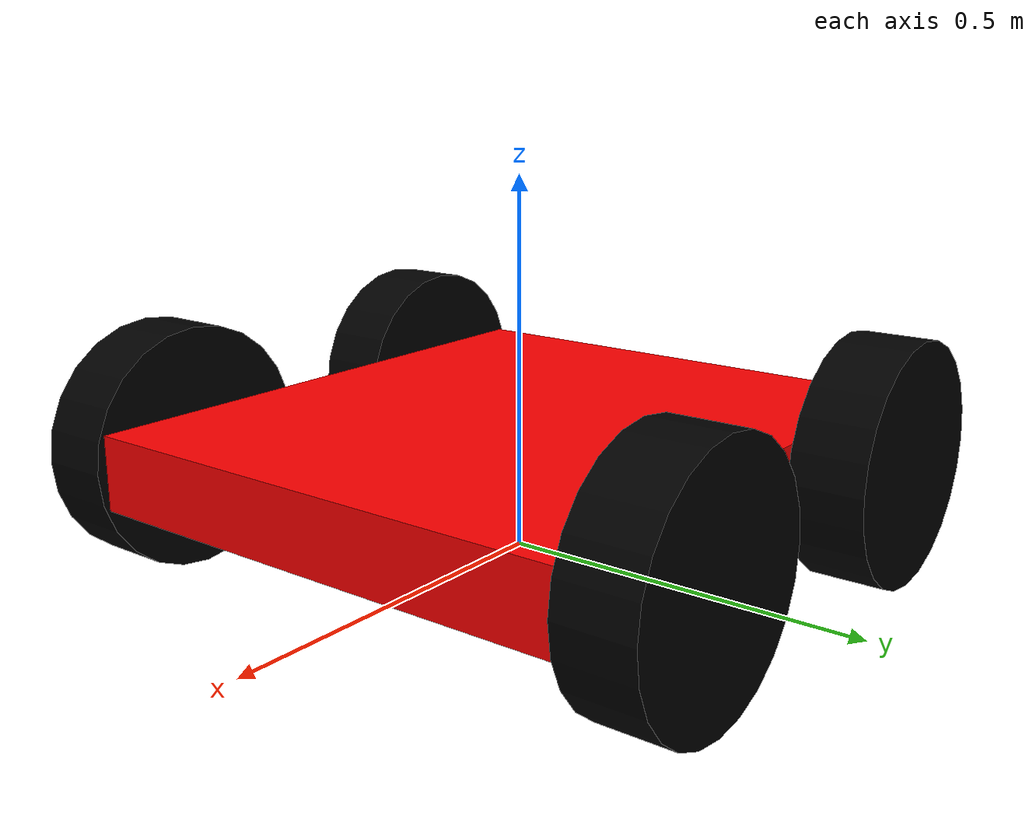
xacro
<?xml version="1.0"?>
<robot xmlns:xacro="http://www.ros.org/wiki/xacro" name="rover">

    <!-- Properties-->
    <xacro:property name="base_mass" value="1.0"/>
    <xacro:property name="base_constant" value="0.083333"/>
    <xacro:property name="base_width" value="0.8"/>
    <xacro:property name="base_height" value="0.1"/>
    <xacro:property name="base_depth" value="0.7"/>

    <xacro:property name="wheel_mass" value="0.5"/>
    <xacro:property name="wheel_constant" value="0.083333"/>
    <xacro:property name="wheel_radius" value="0.164"/>
    <xacro:property name="wheel_height" value="0.1"/>

    <!-- Macros-->
    <xacro:macro name="wheel" params="name x y mesh">
        <link name="wheel_${name}_link">
            <inertial>
                <origin xyz="0.0 0.0 0.0" rpy="1.57079632 0.0 0.0"/>
                <mass value="0.5"/>
                <inertia ixx="${wheel_constant * wheel_mass * ((3.0*wheel_radius*wheel_radius) + (wheel_height*wheel_height))}" ixy="0.0" ixz="0.0"
                iyy="${wheel_constant * wheel_mass * ((3.0*wheel_radius*wheel_radius) + (wheel_height*wheel_height))}" iyz="0.0"
                izz="${0.5 * wheel_mass * wheel_radius * wheel_radius}"/>
            </inertial>
            <visual>
                <origin xyz="0.0 0.0 0.0" rpy="1.57079632 0.0 0.0"/>
                <geometry>
                    <cylinder radius="0.164" length="0.1"/>
                </geometry>
                <material name="black">
                    <color rgba="0.0 0.0 0.0 1.0"/>
                </material>
            </visual>
            <collision>
                <origin xyz="0.0 0.0 0.0" rpy="1.57079632 0.0 0.0"/>
                <geometry>
                    <cylinder radius="0.164" length="0.1"/>
                </geometry>
            </collision>
        </link>
        <gazebo reference ="wheel_${name}_link">
            <mu1 value="1.0"/>
            <mu2 value="1.0"/>
            <kp  value="10000000.0" />
            <kd  value="1.0" />
            <fdir1 value="1 0 0"/>
            <material>Gazebo/Grey</material>
            <turnGravityOff>false</turnGravityOff>
        </gazebo>

        <joint name="wheel_${name}_joint" type="continuous">
            <origin xyz="${x} ${y} 0.0" rpy="0.0 0.0 0.0"/>
            <parent link="base_link"/>
            <child link="wheel_${name}_link"/>
            <axis xyz="0.0 1.0 0.0"/>
        </joint>

        <!-- Transmission is important to link the joints and the controller -->
        <transmission name="wheel_${name}_joint_trans">
            <type>transmission_interface/SimpleTransmission</type>
            <joint name="wheel_${name}_joint" />
            <actuator name="wheel_${name}_joint_motor">
                <hardwareInterface>EffortJointInterface</hardwareInterface>
                <mechanicalReduction>1</mechanicalReduction>
            </actuator>
        </transmission>
    </xacro:macro>

    <!-- Main Robot-->

    <link name="base_footprint">

    </link>

    <link name="base_link">
        <inertial>
            <origin xyz="0.0 0.0 0.0" rpy="0.0 0.0 0.0"/>
            <mass value="1.0"/>
            <inertia ixx="${base_constant * base_mass * (base_height*base_height + base_depth*base_depth)}" ixy="0.0" ixz="0.0"
            iyy="${base_constant * base_mass * (base_width*base_width + base_height*base_height)}" iyz="0.0"
            izz="${base_constant * base_mass * (base_width*base_width + base_depth*base_depth)}"/>
        </inertial>
        <visual>
            <origin xyz="0.0 0.0 0.0" rpy="0.0 0.0 0.0"/>
            <geometry>
                <box size="0.8 0.7 0.1"/>
            </geometry>
            <material name="">
                <color rgba="1.0 0.0 0.0 1.0"/>
                <texture filename=""/>
            </material>
        </visual>
        <collision>
            <origin xyz="0.0 0.0 0.0" rpy="0.0 0.0 0.0"/>
            <geometry>
                <box size="0.8 0.7 0.1"/>
            </geometry>
        </collision>
    </link>
<!-- Adding movement to the robot-->

    <!-- ROS control plugins-->
    <gazebo>
        <plugin name="gazebo_ros_control" filename="libgazebo_ros_control.so">
            <robotNamespace>/rover</robotNamespace>
        </plugin>
    </gazebo>

    <!-- Differential Drive controllers-->
    <gazebo>
        <plugin name="differential_drive_controller" filename="libgazebo_ros_diff_drive.so">
            <rosDebugLevel>Debug</rosDebugLevel>
            <publishWheelTF>true</publishWheelTF>
            <robotNamespace></robotNamespace>
            <publishTf>1</publishTf>
            <publishWheelJointState>true</publishWheelJointState>
            <alwaysOn>true</alwaysOn>
            <updateRate>100.0</updateRate>
            <leftJoint>wheel_front_left_joint</leftJoint>
            <rightJoint>wheel_front_right_joint</rightJoint>
            <wheelSeparation>0.5</wheelSeparation>
            <wheelDiameter>${2*wheel_radius}</wheelDiameter>
            <broadcastTF>1</broadcastTF>
            <wheelTorque>30</wheelTorque>
            <wheelAcceleration>1.8</wheelAcceleration>
            <commandTopic>cmd_vel</commandTopic>
            <odometryFrame>odom</odometryFrame>
            <odometryTopic>odom</odometryTopic>
            <odometrySource>1</odometrySource>
            <robotBaseFrame>base_footprint</robotBaseFrame>
            <legacyMode>false</legacyMode>
        </plugin>
    </gazebo>
    <joint name="base_joint" type="fixed">
        <origin xyz="0.0 0.0 0.135" rpy="0.0 0.0 0.0"/>
        <parent link="base_footprint"/>
        <child link="base_link"/>
    </joint>

    <!--Rear right wheel-->
    <xacro:wheel name="rear_right" x="0.25" y="0.4" mesh="right_tire.stl"/>

    <!--Rear left wheel-->
    <xacro:wheel name="rear_left" x="0.25" y="-0.4" mesh="left_tire.stl"/>

    <!--Front right wheel-->
    <xacro:wheel name="front_right" x="-0.25" y="0.4" mesh="right_tire.stl"/>

    <!--Front left wheel-->
    <xacro:wheel name="front_left" x="-0.25" y="-0.4" mesh="left_tire.stl"/>

    <!-- Gazebo Colors-->
    <gazebo reference ="base_link">
        <material>Gazebo/Red</material>
    </gazebo>

    <!-- Adding movement to the robot-->

    <!-- ROS control plugins-->
    <gazebo>
        <plugin name="gazebo_ros_control" filename="libgazebo_ros_control.so">
            <robotNamespace>/rover</robotNamespace>
        </plugin>
    </gazebo>

    <!-- Differential Drive controllers-->
    <gazebo>
        <plugin name="differential_drive_controller" filename="libgazebo_ros_diff_drive.so">
            <rosDebugLevel>Debug</rosDebugLevel>
            <publishWheelTF>true</publishWheelTF>
            <robotNamespace></robotNamespace>
            <publishTf>1</publishTf>
            <publishWheelJointState>true</publishWheelJointState>
            <alwaysOn>true</alwaysOn>
            <updateRate>100.0</updateRate>
            <leftJoint>wheel_front_left_joint</leftJoint>
            <rightJoint>wheel_front_right_joint</rightJoint>
            <wheelSeparation>0.5</wheelSeparation>
            <wheelDiameter>${2*wheel_radius}</wheelDiameter>
            <broadcastTF>1</broadcastTF>
            <wheelTorque>30</wheelTorque>
            <wheelAcceleration>1.8</wheelAcceleration>
            <commandTopic>cmd_vel</commandTopic>
            <odometryFrame>odom</odometryFrame>
            <odometryTopic>odom</odometryTopic>
            <odometrySource>1</odometrySource>
            <robotBaseFrame>base_footprint</robotBaseFrame>
            <legacyMode>false</legacyMode>
        </plugin>
    </gazebo>

    <!-- Transmission macros-->

</robot>
